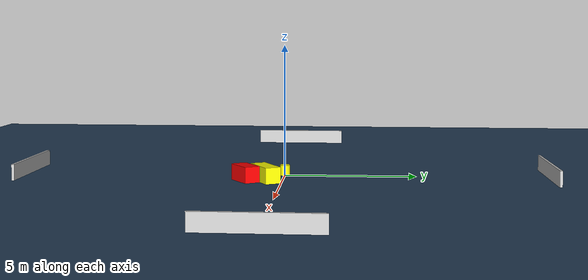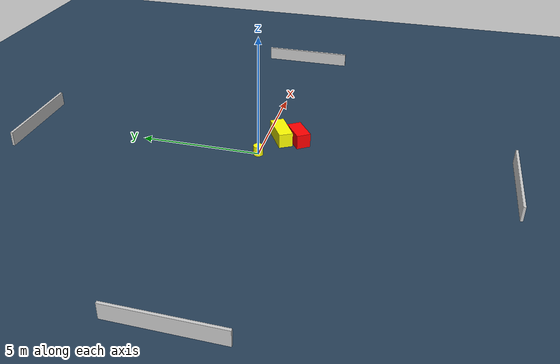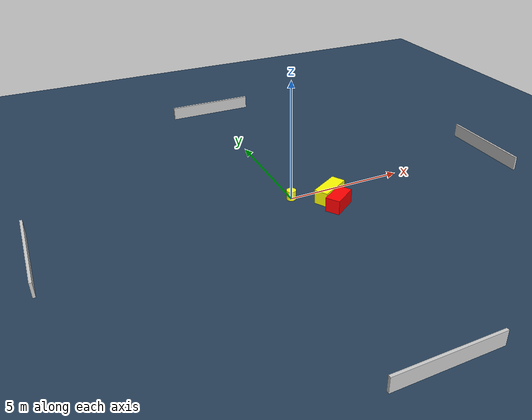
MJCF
<?xml version="1.0" ?>
<mujoco model="generated_environment">
  <option timestep="0.01" integrator="RK4" cone="elliptic"/>
  <default>
    <geom density="1"/>
  </default>
  <asset>
    <texture builtin="gradient" height="3072" name="skybox" rgb1="0.3 0.5 0.7" rgb2="0 0 0" type="skybox" width="512"/>
    <texture builtin="checker" height="300" name="groundplane" rgb1="0.2 0.3 0.4" rgb2="0.1 0.2 0.3" type="2d" width="300"/>
    <material name="groundplane" reflectance="0.2" texrepeat="5 5" texture="groundplane"/>
  </asset>
  <worldbody>
    <light dir="0 0 -1" directional="true" pos="0 0 1.5"/>
    <geom condim="3" friction="0.5 0.005 0.001" material="groundplane" name="floor" pos="0 0 0" size="0 0 0.05" type="plane"/>
    <body name="walls">
      <geom name="wall_1" condim="4" pos="-10.0 0.0 0.3" rgba="0.800000011920929 0.800000011920929 0.800000011920929 1.0" size="0.05 2.0 0.3" type="box"/>
      <geom name="wall_2" condim="4" pos="10.0 0.0 0.3" rgba="0.800000011920929 0.800000011920929 0.800000011920929 1.0" size="0.05 2.0 0.3" type="box"/>
      <geom name="wall_3" condim="4" pos="0.0 -10.0 0.3" rgba="0.800000011920929 0.800000011920929 0.800000011920929 1.0" size="2.0 0.05 0.3" type="box"/>
      <geom name="wall_4" condim="4" pos="0.0 10.0 0.3" rgba="0.800000011920929 0.800000011920929 0.800000011920929 1.0" size="2.0 0.05 0.3" type="box"/>
    </body>
    <body name="robot">
      <joint name="joint_x" type="slide" pos="0 0 0" axis="1 0 0"/>
      <joint name="joint_y" type="slide" pos="0 0 0" axis="0 1 0"/>
      <geom name="robot" type="cylinder" pos="0.0 0.0 0.2" size="0.2 0.2 0.0" mass="5.0" friction="1.0 0.005 0.0001" condim="4" rgba="1.0 1.0 0.0 1.0"/>
    </body>
    <body name="obstacle_1_movable">
      <geom name="obstacle_1_movable" condim="4" pos="1.4334035667629723 -0.6153216314953491 0.3" euler="0 0 119.78854497599495" friction="0.0 0.005 0.001" rgba="1.0 1.0 0.0 1.0" size="0.29288032618893833 0.6830949384455858 0.3" type="box" mass="0.1"/>
      <joint type="free"/>
    </body>
    <body name="obstacle_2_static">
      <geom name="obstacle_2_static" condim="4" pos="1.4256838122774098 -1.360241712352946 0.3" euler="0 0 124.57628966330955" friction="0.0 0.005 0.001" rgba="1.0 0.0 0.0 1.0" size="0.2975862246754548 0.5535489110067335 0.3" type="box"/>
    </body>
  </worldbody>
  <actuator>
    <motor name="actuator_x" joint="joint_x" gear="1" ctrlrange="-1 1"/>
    <motor name="actuator_y" joint="joint_y" gear="1" ctrlrange="-1 1"/>
  </actuator>
</mujoco>
